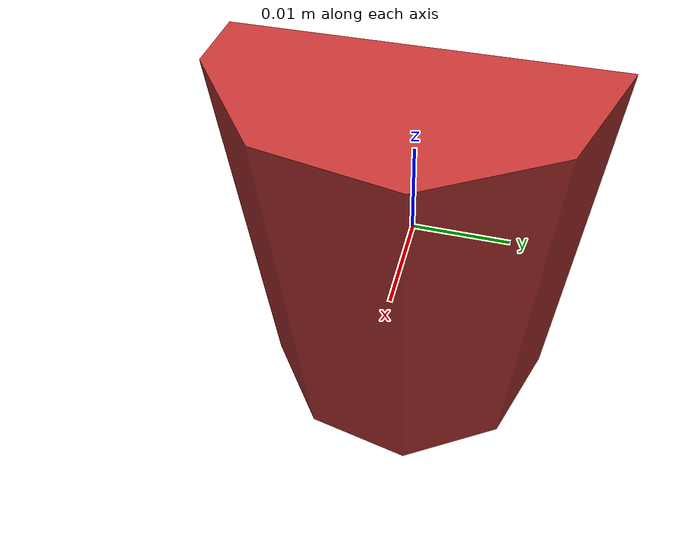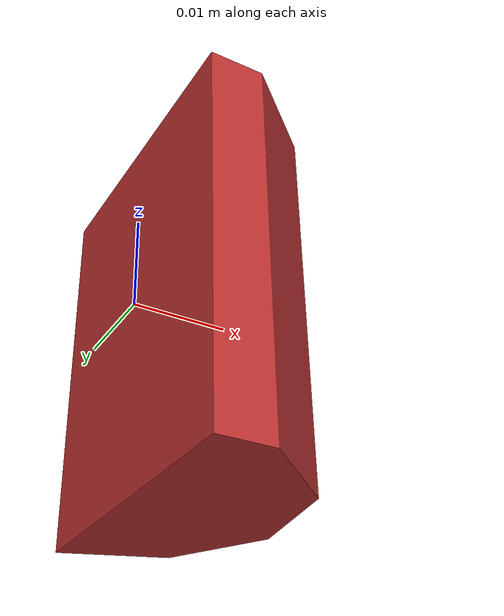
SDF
<?xml version="1.0" ?>
<sdf version='1.6'>
  <model name='cyl_2'>
    <link name='cyl_2'>
      <pose frame=''>0 0 0 0 0 0</pose>
      <inertial>
        <pose frame=''>0.006781 -0.000000 0.000000 0. 0. 0.</pose>
        <mass>1.60762185202e-05</mass>
        <inertia>
          <ixx>3.18409669425e-09</ixx>
          <ixy>-1.75071185741e-12</ixy>
          <ixz>0.0</ixz>
          <iyy>2.44495852002e-09</iyy>
          <iyz>2.75726870851e-26</iyz>
          <izz>1.31359374382e-09</izz>
        </inertia>
      </inertial>
      <visual>
        <pose frame=''>0 0 0 0 0 0</pose>
        <geometry>
          <mesh>
            <scale>1 1 1</scale>
            <uri>models/half_carrot_models/meshes/cyl_2.obj</uri>
          </mesh>
        </geometry>
        <material>
          <ambient>0.75 0.2 0.2 1.0</ambient>
          <diffuse>0.75 0.2 0.2 1.0</diffuse>
          <specular>0.01 0.01 0.01 1</specular>
          <emissive>0 0 0 1</emissive>
          <shader type='vertex'>
            <normal_map>__default__</normal_map>
          </shader>
        </material>
      </visual>
      <collision>
        <pose frame=''>0 0 0 0 0 0</pose>
        <geometry>
          <mesh>
            <scale>1 1 1</scale>
            <uri>models/half_carrot_models/meshes/cyl_2.obj</uri>
          </mesh>
        </geometry>
      </collision>
      <gravity>1</gravity>
      <self_collide>0</self_collide>
    </link>
  </model>
</sdf>
